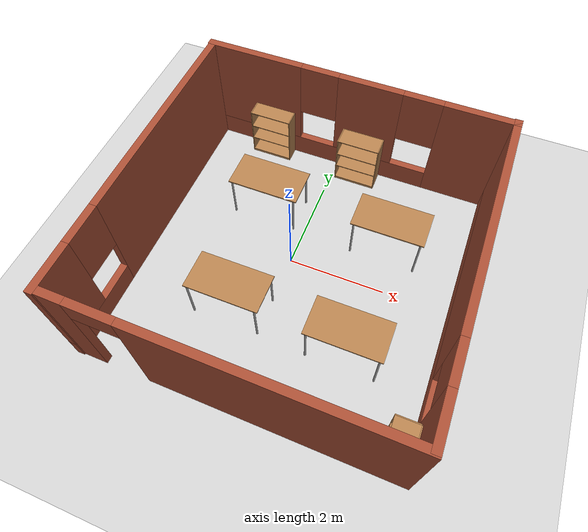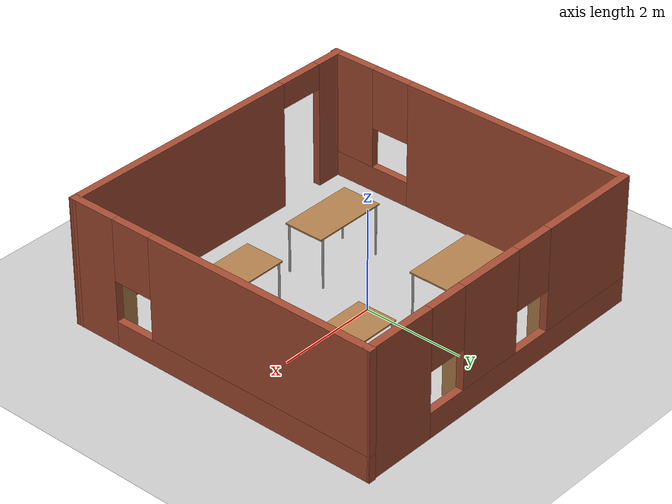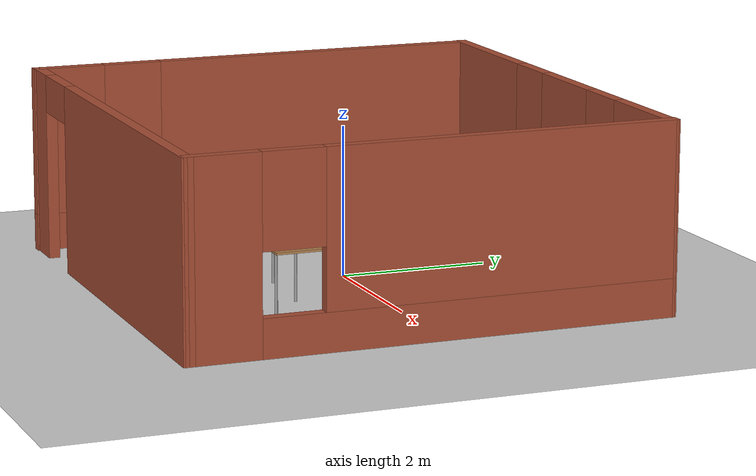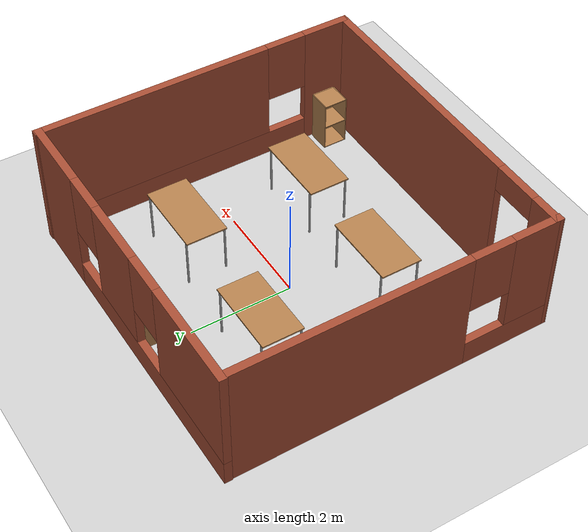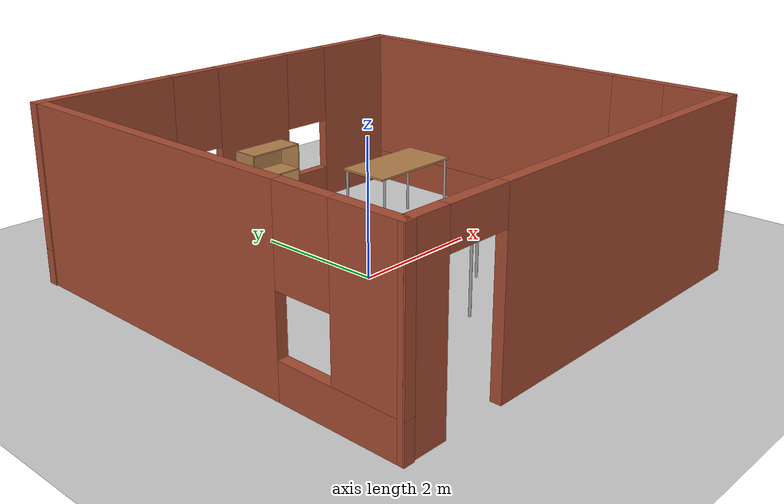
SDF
<sdf version="1.7">
 <world name="default">
  <model name="ground_plane">
   <static>1</static>
   <link name="link">
    <collision name="collision">
     <geometry><plane><normal>0 0 1</normal><size>100 100</size></plane></geometry>
     <surface>
      <contact><collide_bitmask>65535</collide_bitmask></contact>
      <friction><ode><mu>100</mu><mu2>50</mu2></ode></friction>
     </surface>
    </collision>
    <visual name="visual">
     <cast_shadows>0</cast_shadows>
     <geometry><plane><normal>0 0 1</normal><size>100 100</size></plane></geometry>
     <material>
      <script><uri>file://media/materials/scripts/gazebo.material</uri><name>Gazebo/Grey</name></script>
     </material>
    </visual>
   </link>
  </model>
  <light name="sun" type="directional">
   <pose>0 0 10 0 -0 0</pose>
   <diffuse>0.8 0.8 0.8 1</diffuse>
   <specular>0.2 0.2 0.2 1</specular>
   <attenuation>
    <range>1000</range>
    <constant>0.9</constant>
    <linear>0.01</linear>
    <quadratic>0.001</quadratic>
   </attenuation>
   <direction>-0.5 0.1 -0.9</direction>
   <spot><inner_angle>0</inner_angle><outer_angle>0</outer_angle><falloff>0</falloff></spot>
  </light>
  <scene><shadows>0</shadows><ambient>0.4 0.4 0.4 1</ambient><background>0.7 0.7 0.7 1</background></scene>
  <physics type="ode">
   <real_time_update_rate>1000</real_time_update_rate>
   <max_step_size>0.001</max_step_size>
   <real_time_factor>1</real_time_factor>
   <ode>
    <solver>
     <type>quick</type>
     <iters>150</iters>
     <precon_iters>0</precon_iters>
     <sor>1.4</sor>
     <use_dynamic_moi_rescaling>1</use_dynamic_moi_rescaling>
    </solver>
    <constraints>
     <cfm>1e-05</cfm>
     <erp>0.2</erp>
     <contact_max_correcting_vel>2000</contact_max_correcting_vel>
     <contact_surface_layer>0.01</contact_surface_layer>
    </constraints>
   </ode>
  </physics>
  <gravity>0 0 -9.8</gravity>
  <magnetic_field>6e-06 2.3e-05 -4.2e-05</magnetic_field>
  <atmosphere type="adiabatic"/>
  <audio><device>default</device></audio>
  <spherical_coordinates>
   <surface_model>EARTH_WGS84</surface_model>
   <latitude_deg>0</latitude_deg>
   <longitude_deg>0</longitude_deg>
   <elevation>0</elevation>
   <heading_deg>0</heading_deg>
  </spherical_coordinates>
  <model name="Untitled">
   <pose>0.238412 -0.147541 0 0 -0 0</pose>
   <link name="Wall_0">
    <pose>-3.1591 -0.071326 0 0 -0 -1.5708</pose>
    <visual name="Wall_0_Visual_0">
     <pose>-0.890529 0 1.25 0 -0 0</pose>
     <geometry><box><size>4.46894 0.15 2.5</size></box></geometry>
     <material>
      <script><uri>file://media/materials/scripts/gazebo.material</uri><name>Gazebo/Bricks</name></script>
      <ambient>1 1 1 1</ambient>
     </material>
     <meta><layer>0</layer></meta>
    </visual>
    <collision name="Wall_0_Collision_0">
     <geometry><box><size>4.46894 0.15 2.5</size></box></geometry>
     <pose>-0.890529 0 1.25 0 -0 0</pose>
    </collision>
    <visual name="Wall_0_Visual_1">
     <pose>2.23447 0 0.25 0 -0 0</pose>
     <geometry><box><size>1.78106 0.15 0.5</size></box></geometry>
     <material>
      <script><uri>file://media/materials/scripts/gazebo.material</uri><name>Gazebo/Bricks</name></script>
      <ambient>1 1 1 1</ambient>
     </material>
     <meta><layer>0</layer></meta>
    </visual>
    <collision name="Wall_0_Collision_1">
     <geometry><box><size>1.78106 0.15 0.5</size></box></geometry>
     <pose>2.23447 0 0.25 0 -0 0</pose>
    </collision>
    <visual name="Wall_0_Visual_2">
     <pose>2.63447 0 1.5 0 -0 0</pose>
     <geometry><box><size>0.981059 0.15 2</size></box></geometry>
     <material>
      <script><uri>file://media/materials/scripts/gazebo.material</uri><name>Gazebo/Bricks</name></script>
      <ambient>1 1 1 1</ambient>
     </material>
     <meta><layer>0</layer></meta>
    </visual>
    <collision name="Wall_0_Collision_2">
     <geometry><box><size>0.981059 0.15 2</size></box></geometry>
     <pose>2.63447 0 1.5 0 -0 0</pose>
    </collision>
    <visual name="Wall_0_Visual_3">
     <pose>1.74394 0 1.9 0 -0 0</pose>
     <geometry><box><size>0.8 0.15 1.2</size></box></geometry>
     <material>
      <script><uri>file://media/materials/scripts/gazebo.material</uri><name>Gazebo/Bricks</name></script>
      <ambient>1 1 1 1</ambient>
     </material>
     <meta><layer>0</layer></meta>
    </visual>
    <collision name="Wall_0_Collision_3">
     <geometry><box><size>0.8 0.15 1.2</size></box></geometry>
     <pose>1.74394 0 1.9 0 -0 0</pose>
    </collision>
   </link>
   <link name="Wall_1">
    <pose>0.0085 -3.12133 0 0 -0 -0.00635</pose>
    <visual name="Wall_1_Visual_0">
     <pose>-2.92293 0 1.25 0 -0 0</pose>
     <geometry><box><size>0.639461 0.15 2.5</size></box></geometry>
     <material>
      <script><uri>file://media/materials/scripts/gazebo.material</uri><name>Gazebo/Bricks</name></script>
      <ambient>1 1 1 1</ambient>
     </material>
     <meta><layer>0</layer></meta>
    </visual>
    <collision name="Wall_1_Collision_0">
     <geometry><box><size>0.639461 0.15 2.5</size></box></geometry>
     <pose>-2.92293 0 1.25 0 -0 0</pose>
    </collision>
    <visual name="Wall_1_Visual_1">
     <pose>0.769731 0 1.25 0 -0 0</pose>
     <geometry><box><size>4.94587 0.15 2.5</size></box></geometry>
     <material>
      <script><uri>file://media/materials/scripts/gazebo.material</uri><name>Gazebo/Bricks</name></script>
      <ambient>1 1 1 1</ambient>
     </material>
     <meta><layer>0</layer></meta>
    </visual>
    <collision name="Wall_1_Collision_1">
     <geometry><box><size>4.94587 0.15 2.5</size></box></geometry>
     <pose>0.769731 0 1.25 0 -0 0</pose>
    </collision>
    <visual name="Wall_1_Visual_2">
     <pose>-2.1532 0 2.25 0 -0 0</pose>
     <geometry><box><size>0.9 0.15 0.5</size></box></geometry>
     <material>
      <script><uri>file://media/materials/scripts/gazebo.material</uri><name>Gazebo/Bricks</name></script>
      <ambient>1 1 1 1</ambient>
     </material>
     <meta><layer>0</layer></meta>
    </visual>
    <collision name="Wall_1_Collision_2">
     <geometry><box><size>0.9 0.15 0.5</size></box></geometry>
     <pose>-2.1532 0 2.25 0 -0 0</pose>
    </collision>
   </link>
   <link name="Wall_2">
    <pose>3.17476 0.013521 0 0 -0 1.57122</pose>
    <visual name="Wall_2_Visual_0">
     <pose>-2.72484 0 1.25 0 -0 0</pose>
     <geometry><box><size>0.957046 0.15 2.5</size></box></geometry>
     <material>
      <script><uri>file://media/materials/scripts/gazebo.material</uri><name>Gazebo/Bricks</name></script>
      <ambient>1 1 1 1</ambient>
     </material>
     <meta><layer>0</layer></meta>
    </visual>
    <collision name="Wall_2_Collision_0">
     <geometry><box><size>0.957046 0.15 2.5</size></box></geometry>
     <pose>-2.72484 0 1.25 0 -0 0</pose>
    </collision>
    <visual name="Wall_2_Visual_1">
     <pose>0.478523 0 0.25 0 -0 0</pose>
     <geometry><box><size>5.44968 0.15 0.5</size></box></geometry>
     <material>
      <script><uri>file://media/materials/scripts/gazebo.material</uri><name>Gazebo/Bricks</name></script>
      <ambient>1 1 1 1</ambient>
     </material>
     <meta><layer>0</layer></meta>
    </visual>
    <collision name="Wall_2_Collision_1">
     <geometry><box><size>5.44968 0.15 0.5</size></box></geometry>
     <pose>0.478523 0 0.25 0 -0 0</pose>
    </collision>
    <visual name="Wall_2_Visual_2">
     <pose>0.878523 0 1.5 0 -0 0</pose>
     <geometry><box><size>4.64968 0.15 2</size></box></geometry>
     <material>
      <script><uri>file://media/materials/scripts/gazebo.material</uri><name>Gazebo/Bricks</name></script>
      <ambient>1 1 1 1</ambient>
     </material>
     <meta><layer>0</layer></meta>
    </visual>
    <collision name="Wall_2_Collision_2">
     <geometry><box><size>4.64968 0.15 2</size></box></geometry>
     <pose>0.878523 0 1.5 0 -0 0</pose>
    </collision>
    <visual name="Wall_2_Visual_3">
     <pose>-1.84631 0 1.9 0 -0 0</pose>
     <geometry><box><size>0.8 0.15 1.2</size></box></geometry>
     <material>
      <script><uri>file://media/materials/scripts/gazebo.material</uri><name>Gazebo/Bricks</name></script>
      <ambient>1 1 1 1</ambient>
     </material>
     <meta><layer>0</layer></meta>
    </visual>
    <collision name="Wall_2_Collision_3">
     <geometry><box><size>0.8 0.15 1.2</size></box></geometry>
     <pose>-1.84631 0 1.9 0 -0 0</pose>
    </collision>
   </link>
   <link name="Wall_3">
    <pose>-0.001575 3.12177 0 0 -0 3.14159</pose>
    <visual name="Wall_3_Visual_0">
     <pose>-2.51176 0 1.25 0 -0 0</pose>
     <geometry><box><size>1.47648 0.15 2.5</size></box></geometry>
     <material>
      <script><uri>file://media/materials/scripts/gazebo.material</uri><name>Gazebo/Bricks</name></script>
      <ambient>1 1 1 1</ambient>
     </material>
     <meta><layer>0</layer></meta>
    </visual>
    <collision name="Wall_3_Collision_0">
     <geometry><box><size>1.47648 0.15 2.5</size></box></geometry>
     <pose>-2.51176 0 1.25 0 -0 0</pose>
    </collision>
    <visual name="Wall_3_Visual_1">
     <pose>0.738241 0 0.25 0 -0 0</pose>
     <geometry><box><size>5.02352 0.15 0.5</size></box></geometry>
     <material>
      <script><uri>file://media/materials/scripts/gazebo.material</uri><name>Gazebo/Bricks</name></script>
      <ambient>1 1 1 1</ambient>
     </material>
     <meta><layer>0</layer></meta>
    </visual>
    <collision name="Wall_3_Collision_1">
     <geometry><box><size>5.02352 0.15 0.5</size></box></geometry>
     <pose>0.738241 0 0.25 0 -0 0</pose>
    </collision>
    <visual name="Wall_3_Visual_2">
     <pose>-0.306624 0 1.5 0 -0 0</pose>
     <geometry><box><size>1.33379 0.15 2</size></box></geometry>
     <material>
      <script><uri>file://media/materials/scripts/gazebo.material</uri><name>Gazebo/Bricks</name></script>
      <ambient>1 1 1 1</ambient>
     </material>
     <meta><layer>0</layer></meta>
    </visual>
    <collision name="Wall_3_Collision_2">
     <geometry><box><size>1.33379 0.15 2</size></box></geometry>
     <pose>-0.306624 0 1.5 0 -0 0</pose>
    </collision>
    <visual name="Wall_3_Visual_3">
     <pose>2.20513 0 1.5 0 -0 0</pose>
     <geometry><box><size>2.08973 0.15 2</size></box></geometry>
     <material>
      <script><uri>file://media/materials/scripts/gazebo.material</uri><name>Gazebo/Bricks</name></script>
      <ambient>1 1 1 1</ambient>
     </material>
     <meta><layer>0</layer></meta>
    </visual>
    <collision name="Wall_3_Collision_3">
     <geometry><box><size>2.08973 0.15 2</size></box></geometry>
     <pose>2.20513 0 1.5 0 -0 0</pose>
    </collision>
    <visual name="Wall_3_Visual_4">
     <pose>-1.37352 0 1.9 0 -0 0</pose>
     <geometry><box><size>0.8 0.15 1.2</size></box></geometry>
     <material>
      <script><uri>file://media/materials/scripts/gazebo.material</uri><name>Gazebo/Bricks</name></script>
      <ambient>1 1 1 1</ambient>
     </material>
     <meta><layer>0</layer></meta>
    </visual>
    <collision name="Wall_3_Collision_4">
     <geometry><box><size>0.8 0.15 1.2</size></box></geometry>
     <pose>-1.37352 0 1.9 0 -0 0</pose>
    </collision>
    <visual name="Wall_3_Visual_5">
     <pose>0.76027 0 1.9 0 -0 0</pose>
     <geometry><box><size>0.8 0.15 1.2</size></box></geometry>
     <material>
      <script><uri>file://media/materials/scripts/gazebo.material</uri><name>Gazebo/Bricks</name></script>
      <ambient>1 1 1 1</ambient>
     </material>
     <meta><layer>0</layer></meta>
    </visual>
    <collision name="Wall_3_Collision_5">
     <geometry><box><size>0.8 0.15 1.2</size></box></geometry>
     <pose>0.76027 0 1.9 0 -0 0</pose>
    </collision>
   </link>
   <static>1</static>
  </model>
  <model name="bookshelf">
   <static>1</static>
   <link name="link">
    <inertial><mass>1</mass></inertial>
    <collision name="back">
     <pose>0 0.005 0.6 0 -0 0</pose>
     <geometry><box><size>0.9 0.01 1.2</size></box></geometry>
    </collision>
    <visual name="visual1">
     <pose>0 0.005 0.6 0 -0 0</pose>
     <geometry><box><size>0.9 0.01 1.2</size></box></geometry>
     <material>
      <script><uri>file://media/materials/scripts/gazebo.material</uri><name>Gazebo/Wood</name></script>
     </material>
    </visual>
    <collision name="left_side">
     <pose>0.45 -0.195 0.6 0 -0 0</pose>
     <geometry><box><size>0.02 0.4 1.2</size></box></geometry>
    </collision>
    <visual name="visual2">
     <pose>0.45 -0.195 0.6 0 -0 0</pose>
     <geometry><box><size>0.02 0.4 1.2</size></box></geometry>
     <material>
      <script><uri>file://media/materials/scripts/gazebo.material</uri><name>Gazebo/Wood</name></script>
     </material>
    </visual>
    <collision name="right_side">
     <pose>-0.45 -0.195 0.6 0 -0 0</pose>
     <geometry><box><size>0.02 0.4 1.2</size></box></geometry>
    </collision>
    <visual name="visual3">
     <pose>-0.45 -0.195 0.6 0 -0 0</pose>
     <geometry><box><size>0.02 0.4 1.2</size></box></geometry>
     <material>
      <script><uri>file://media/materials/scripts/gazebo.material</uri><name>Gazebo/Wood</name></script>
     </material>
    </visual>
    <collision name="bottom">
     <pose>0 -0.195 0.03 0 -0 0</pose>
     <geometry><box><size>0.88 0.4 0.06</size></box></geometry>
    </collision>
    <visual name="visual4">
     <pose>0 -0.195 0.03 0 -0 0</pose>
     <geometry><box><size>0.88 0.4 0.06</size></box></geometry>
     <material>
      <script><uri>file://media/materials/scripts/gazebo.material</uri><name>Gazebo/Wood</name></script>
     </material>
    </visual>
    <collision name="top">
     <pose>0 -0.195 1.19 0 -0 0</pose>
     <geometry><box><size>0.88 0.4 0.02</size></box></geometry>
    </collision>
    <visual name="visual5">
     <pose>0 -0.195 1.19 0 -0 0</pose>
     <geometry><box><size>0.88 0.4 0.02</size></box></geometry>
     <material>
      <script><uri>file://media/materials/scripts/gazebo.material</uri><name>Gazebo/Wood</name></script>
     </material>
    </visual>
    <collision name="low_shelf">
     <pose>0 -0.195 0.43 0 -0 0</pose>
     <geometry><box><size>0.88 0.4 0.02</size></box></geometry>
    </collision>
    <visual name="visual6">
     <pose>0 -0.195 0.43 0 -0 0</pose>
     <geometry><box><size>0.88 0.4 0.02</size></box></geometry>
     <material>
      <script><uri>file://media/materials/scripts/gazebo.material</uri><name>Gazebo/Wood</name></script>
     </material>
    </visual>
    <collision name="high_shelf">
     <pose>0 -0.195 0.8 0 -0 0</pose>
     <geometry><box><size>0.88 0.4 0.02</size></box></geometry>
    </collision>
    <visual name="visual7">
     <pose>0 -0.195 0.8 0 -0 0</pose>
     <geometry><box><size>0.88 0.4 0.02</size></box></geometry>
     <material>
      <script><uri>file://media/materials/scripts/gazebo.material</uri><name>Gazebo/Wood</name></script>
     </material>
    </visual>
   </link>
   <pose>0.551823 2.85263 0 0 -0 0</pose>
  </model>
  <model name="bookshelf_0">
   <static>1</static>
   <link name="link">
    <inertial><mass>1</mass></inertial>
    <collision name="back">
     <pose>0 0.005 0.6 0 -0 0</pose>
     <geometry><box><size>0.9 0.01 1.2</size></box></geometry>
    </collision>
    <visual name="visual1">
     <pose>0 0.005 0.6 0 -0 0</pose>
     <geometry><box><size>0.9 0.01 1.2</size></box></geometry>
     <material>
      <script><uri>file://media/materials/scripts/gazebo.material</uri><name>Gazebo/Wood</name></script>
     </material>
    </visual>
    <collision name="left_side">
     <pose>0.45 -0.195 0.6 0 -0 0</pose>
     <geometry><box><size>0.02 0.4 1.2</size></box></geometry>
    </collision>
    <visual name="visual2">
     <pose>0.45 -0.195 0.6 0 -0 0</pose>
     <geometry><box><size>0.02 0.4 1.2</size></box></geometry>
     <material>
      <script><uri>file://media/materials/scripts/gazebo.material</uri><name>Gazebo/Wood</name></script>
     </material>
    </visual>
    <collision name="right_side">
     <pose>-0.45 -0.195 0.6 0 -0 0</pose>
     <geometry><box><size>0.02 0.4 1.2</size></box></geometry>
    </collision>
    <visual name="visual3">
     <pose>-0.45 -0.195 0.6 0 -0 0</pose>
     <geometry><box><size>0.02 0.4 1.2</size></box></geometry>
     <material>
      <script><uri>file://media/materials/scripts/gazebo.material</uri><name>Gazebo/Wood</name></script>
     </material>
    </visual>
    <collision name="bottom">
     <pose>0 -0.195 0.03 0 -0 0</pose>
     <geometry><box><size>0.88 0.4 0.06</size></box></geometry>
    </collision>
    <visual name="visual4">
     <pose>0 -0.195 0.03 0 -0 0</pose>
     <geometry><box><size>0.88 0.4 0.06</size></box></geometry>
     <material>
      <script><uri>file://media/materials/scripts/gazebo.material</uri><name>Gazebo/Wood</name></script>
     </material>
    </visual>
    <collision name="top">
     <pose>0 -0.195 1.19 0 -0 0</pose>
     <geometry><box><size>0.88 0.4 0.02</size></box></geometry>
    </collision>
    <visual name="visual5">
     <pose>0 -0.195 1.19 0 -0 0</pose>
     <geometry><box><size>0.88 0.4 0.02</size></box></geometry>
     <material>
      <script><uri>file://media/materials/scripts/gazebo.material</uri><name>Gazebo/Wood</name></script>
     </material>
    </visual>
    <collision name="low_shelf">
     <pose>0 -0.195 0.43 0 -0 0</pose>
     <geometry><box><size>0.88 0.4 0.02</size></box></geometry>
    </collision>
    <visual name="visual6">
     <pose>0 -0.195 0.43 0 -0 0</pose>
     <geometry><box><size>0.88 0.4 0.02</size></box></geometry>
     <material>
      <script><uri>file://media/materials/scripts/gazebo.material</uri><name>Gazebo/Wood</name></script>
     </material>
    </visual>
    <collision name="high_shelf">
     <pose>0 -0.195 0.8 0 -0 0</pose>
     <geometry><box><size>0.88 0.4 0.02</size></box></geometry>
    </collision>
    <visual name="visual7">
     <pose>0 -0.195 0.8 0 -0 0</pose>
     <geometry><box><size>0.88 0.4 0.02</size></box></geometry>
     <material>
      <script><uri>file://media/materials/scripts/gazebo.material</uri><name>Gazebo/Wood</name></script>
     </material>
    </visual>
   </link>
   <pose>-1.51892 2.94673 0 0 -0 0</pose>
  </model>
  <model name="cabinet">
   <static>1</static>
   <link name="cabinet_bottom_plate">
    <inertial>
     <pose>0 0 -1 0 -0 0</pose>
     <inertia><ixx>2.05</ixx><ixy>0</ixy><ixz>0</ixz><iyy>2.05</iyy><iyz>0</iyz><izz>2.05</izz></inertia>
     <mass>25</mass>
    </inertial>
    <collision name="cabinet_bottom_plate_geom">
     <pose>0 0 0.01 0 -0 0</pose>
     <geometry><box><size>0.45 0.45 0.02</size></box></geometry>
    </collision>
    <visual name="cabinet_bottom_plate_geom_visual">
     <pose>0 0 0.01 0 -0 0</pose>
     <geometry><box><size>0.45 0.45 0.02</size></box></geometry>
     <material>
      <script><uri>file://media/materials/scripts/gazebo.material</uri><name>Gazebo/Wood</name></script>
     </material>
    </visual>
    <collision name="cabinet_bottom_plate_geom_cabinet_back_plate">
     <pose>0.235 0 0.51 0 -0 0</pose>
     <geometry><box><size>0.02 0.45 1.02</size></box></geometry>
    </collision>
    <visual name="cabinet_bottom_plate_geom_cabinet_back_plate_visual">
     <pose>0.235 0 0.51 0 -0 0</pose>
     <geometry><box><size>0.02 0.45 1.02</size></box></geometry>
     <material>
      <script><uri>file://media/materials/scripts/gazebo.material</uri><name>Gazebo/Wood</name></script>
     </material>
    </visual>
    <collision name="cabinet_bottom_plate_geom_cabinet_left_plate">
     <pose>0 0.235 0.51 0 -0 0</pose>
     <geometry><box><size>0.45 0.02 1.02</size></box></geometry>
    </collision>
    <visual name="cabinet_bottom_plate_geom_cabinet_left_plate_visual">
     <pose>0 0.235 0.51 0 -0 0</pose>
     <geometry><box><size>0.45 0.02 1.02</size></box></geometry>
     <material>
      <script><uri>file://media/materials/scripts/gazebo.material</uri><name>Gazebo/Wood</name></script>
     </material>
    </visual>
    <collision name="cabinet_bottom_plate_geom_cabinet_middle_plate">
     <pose>0 0 0.51 0 -0 0</pose>
     <geometry><box><size>0.45 0.45 0.02</size></box></geometry>
    </collision>
    <visual name="cabinet_bottom_plate_geom_cabinet_middle_plate_visual">
     <pose>0 0 0.51 0 -0 0</pose>
     <geometry><box><size>0.45 0.45 0.02</size></box></geometry>
     <material>
      <script><uri>file://media/materials/scripts/gazebo.material</uri><name>Gazebo/Wood</name></script>
     </material>
    </visual>
    <collision name="cabinet_bottom_plate_geom_cabinet_right_plate">
     <pose>0 -0.235 0.51 0 -0 0</pose>
     <geometry><box><size>0.45 0.02 1.02</size></box></geometry>
    </collision>
    <visual name="cabinet_bottom_plate_geom_cabinet_right_plate_visual">
     <pose>0 -0.235 0.51 0 -0 0</pose>
     <geometry><box><size>0.45 0.02 1.02</size></box></geometry>
     <material>
      <script><uri>file://media/materials/scripts/gazebo.material</uri><name>Gazebo/Wood</name></script>
     </material>
    </visual>
    <collision name="cabinet_bottom_plate_geom_cabinet_top_plate">
     <pose>0 0 1.01 0 -0 0</pose>
     <geometry><box><size>0.45 0.45 0.02</size></box></geometry>
    </collision>
    <visual name="cabinet_bottom_plate_geom_cabinet_top_plate_visual">
     <pose>0 0 1.01 0 -0 0</pose>
     <geometry><box><size>0.45 0.45 0.02</size></box></geometry>
     <material>
      <script><uri>file://media/materials/scripts/gazebo.material</uri><name>Gazebo/Wood</name></script>
     </material>
    </visual>
   </link>
   <pose>3.08996 -2.80039 0 0 -0 0</pose>
  </model>
  <model name="table">
   <static>1</static>
   <link name="link">
    <collision name="surface">
     <pose>0 0 1 0 -0 0</pose>
     <geometry><box><size>1.5 0.8 0.03</size></box></geometry>
     <surface><friction><ode><mu>0.6</mu><mu2>0.6</mu2></ode></friction></surface>
    </collision>
    <visual name="visual1">
     <pose>0 0 1 0 -0 0</pose>
     <geometry><box><size>1.5 0.8 0.03</size></box></geometry>
     <material>
      <script><uri>file://media/materials/scripts/gazebo.material</uri><name>Gazebo/Wood</name></script>
     </material>
    </visual>
    <collision name="front_left_leg">
     <pose>0.68 0.38 0.5 0 -0 0</pose>
     <geometry><cylinder><radius>0.02</radius><length>1</length></cylinder></geometry>
    </collision>
    <visual name="front_left_leg">
     <pose>0.68 0.38 0.5 0 -0 0</pose>
     <geometry><cylinder><radius>0.02</radius><length>1</length></cylinder></geometry>
     <material>
      <script><uri>file://media/materials/scripts/gazebo.material</uri><name>Gazebo/Grey</name></script>
     </material>
    </visual>
    <collision name="front_right_leg">
     <pose>0.68 -0.38 0.5 0 -0 0</pose>
     <geometry><cylinder><radius>0.02</radius><length>1</length></cylinder></geometry>
    </collision>
    <visual name="front_right_leg">
     <pose>0.68 -0.38 0.5 0 -0 0</pose>
     <geometry><cylinder><radius>0.02</radius><length>1</length></cylinder></geometry>
     <material>
      <script><uri>file://media/materials/scripts/gazebo.material</uri><name>Gazebo/Grey</name></script>
     </material>
    </visual>
    <collision name="back_right_leg">
     <pose>-0.68 -0.38 0.5 0 -0 0</pose>
     <geometry><cylinder><radius>0.02</radius><length>1</length></cylinder></geometry>
    </collision>
    <visual name="back_right_leg">
     <pose>-0.68 -0.38 0.5 0 -0 0</pose>
     <geometry><cylinder><radius>0.02</radius><length>1</length></cylinder></geometry>
     <material>
      <script><uri>file://media/materials/scripts/gazebo.material</uri><name>Gazebo/Grey</name></script>
     </material>
    </visual>
    <collision name="back_left_leg">
     <pose>-0.68 0.38 0.5 0 -0 0</pose>
     <geometry><cylinder><radius>0.02</radius><length>1</length></cylinder></geometry>
    </collision>
    <visual name="back_left_leg">
     <pose>-0.68 0.38 0.5 0 -0 0</pose>
     <geometry><cylinder><radius>0.02</radius><length>1</length></cylinder></geometry>
     <material>
      <script><uri>file://media/materials/scripts/gazebo.material</uri><name>Gazebo/Grey</name></script>
     </material>
    </visual>
   </link>
   <pose>1.74917 1.07852 0 0 -0 0</pose>
  </model>
  <model name="table_0">
   <static>1</static>
   <link name="link">
    <collision name="surface">
     <pose>0 0 1 0 -0 0</pose>
     <geometry><box><size>1.5 0.8 0.03</size></box></geometry>
     <surface><friction><ode><mu>0.6</mu><mu2>0.6</mu2></ode></friction></surface>
    </collision>
    <visual name="visual1">
     <pose>0 0 1 0 -0 0</pose>
     <geometry><box><size>1.5 0.8 0.03</size></box></geometry>
     <material>
      <script><uri>file://media/materials/scripts/gazebo.material</uri><name>Gazebo/Wood</name></script>
     </material>
    </visual>
    <collision name="front_left_leg">
     <pose>0.68 0.38 0.5 0 -0 0</pose>
     <geometry><cylinder><radius>0.02</radius><length>1</length></cylinder></geometry>
    </collision>
    <visual name="front_left_leg">
     <pose>0.68 0.38 0.5 0 -0 0</pose>
     <geometry><cylinder><radius>0.02</radius><length>1</length></cylinder></geometry>
     <material>
      <script><uri>file://media/materials/scripts/gazebo.material</uri><name>Gazebo/Grey</name></script>
     </material>
    </visual>
    <collision name="front_right_leg">
     <pose>0.68 -0.38 0.5 0 -0 0</pose>
     <geometry><cylinder><radius>0.02</radius><length>1</length></cylinder></geometry>
    </collision>
    <visual name="front_right_leg">
     <pose>0.68 -0.38 0.5 0 -0 0</pose>
     <geometry><cylinder><radius>0.02</radius><length>1</length></cylinder></geometry>
     <material>
      <script><uri>file://media/materials/scripts/gazebo.material</uri><name>Gazebo/Grey</name></script>
     </material>
    </visual>
    <collision name="back_right_leg">
     <pose>-0.68 -0.38 0.5 0 -0 0</pose>
     <geometry><cylinder><radius>0.02</radius><length>1</length></cylinder></geometry>
    </collision>
    <visual name="back_right_leg">
     <pose>-0.68 -0.38 0.5 0 -0 0</pose>
     <geometry><cylinder><radius>0.02</radius><length>1</length></cylinder></geometry>
     <material>
      <script><uri>file://media/materials/scripts/gazebo.material</uri><name>Gazebo/Grey</name></script>
     </material>
    </visual>
    <collision name="back_left_leg">
     <pose>-0.68 0.38 0.5 0 -0 0</pose>
     <geometry><cylinder><radius>0.02</radius><length>1</length></cylinder></geometry>
    </collision>
    <visual name="back_left_leg">
     <pose>-0.68 0.38 0.5 0 -0 0</pose>
     <geometry><cylinder><radius>0.02</radius><length>1</length></cylinder></geometry>
     <material>
      <script><uri>file://media/materials/scripts/gazebo.material</uri><name>Gazebo/Grey</name></script>
     </material>
    </visual>
   </link>
   <pose>-0.932946 1.15377 0 0 -0 0</pose>
  </model>
  <model name="table_1">
   <static>1</static>
   <link name="link">
    <collision name="surface">
     <pose>0 0 1 0 -0 0</pose>
     <geometry><box><size>1.5 0.8 0.03</size></box></geometry>
     <surface><friction><ode><mu>0.6</mu><mu2>0.6</mu2></ode></friction></surface>
    </collision>
    <visual name="visual1">
     <pose>0 0 1 0 -0 0</pose>
     <geometry><box><size>1.5 0.8 0.03</size></box></geometry>
     <material>
      <script><uri>file://media/materials/scripts/gazebo.material</uri><name>Gazebo/Wood</name></script>
     </material>
    </visual>
    <collision name="front_left_leg">
     <pose>0.68 0.38 0.5 0 -0 0</pose>
     <geometry><cylinder><radius>0.02</radius><length>1</length></cylinder></geometry>
    </collision>
    <visual name="front_left_leg">
     <pose>0.68 0.38 0.5 0 -0 0</pose>
     <geometry><cylinder><radius>0.02</radius><length>1</length></cylinder></geometry>
     <material>
      <script><uri>file://media/materials/scripts/gazebo.material</uri><name>Gazebo/Grey</name></script>
     </material>
    </visual>
    <collision name="front_right_leg">
     <pose>0.68 -0.38 0.5 0 -0 0</pose>
     <geometry><cylinder><radius>0.02</radius><length>1</length></cylinder></geometry>
    </collision>
    <visual name="front_right_leg">
     <pose>0.68 -0.38 0.5 0 -0 0</pose>
     <geometry><cylinder><radius>0.02</radius><length>1</length></cylinder></geometry>
     <material>
      <script><uri>file://media/materials/scripts/gazebo.material</uri><name>Gazebo/Grey</name></script>
     </material>
    </visual>
    <collision name="back_right_leg">
     <pose>-0.68 -0.38 0.5 0 -0 0</pose>
     <geometry><cylinder><radius>0.02</radius><length>1</length></cylinder></geometry>
    </collision>
    <visual name="back_right_leg">
     <pose>-0.68 -0.38 0.5 0 -0 0</pose>
     <geometry><cylinder><radius>0.02</radius><length>1</length></cylinder></geometry>
     <material>
      <script><uri>file://media/materials/scripts/gazebo.material</uri><name>Gazebo/Grey</name></script>
     </material>
    </visual>
    <collision name="back_left_leg">
     <pose>-0.68 0.38 0.5 0 -0 0</pose>
     <geometry><cylinder><radius>0.02</radius><length>1</length></cylinder></geometry>
    </collision>
    <visual name="back_left_leg">
     <pose>-0.68 0.38 0.5 0 -0 0</pose>
     <geometry><cylinder><radius>0.02</radius><length>1</length></cylinder></geometry>
     <material>
      <script><uri>file://media/materials/scripts/gazebo.material</uri><name>Gazebo/Grey</name></script>
     </material>
    </visual>
   </link>
   <pose>1.70627 -1.43063 0 0 -0 0</pose>
  </model>
  <model name="table_2">
   <static>1</static>
   <link name="link">
    <collision name="surface">
     <pose>0 0 1 0 -0 0</pose>
     <geometry><box><size>1.5 0.8 0.03</size></box></geometry>
     <surface><friction><ode><mu>0.6</mu><mu2>0.6</mu2></ode></friction></surface>
    </collision>
    <visual name="visual1">
     <pose>0 0 1 0 -0 0</pose>
     <geometry><box><size>1.5 0.8 0.03</size></box></geometry>
     <material>
      <script><uri>file://media/materials/scripts/gazebo.material</uri><name>Gazebo/Wood</name></script>
     </material>
    </visual>
    <collision name="front_left_leg">
     <pose>0.68 0.38 0.5 0 -0 0</pose>
     <geometry><cylinder><radius>0.02</radius><length>1</length></cylinder></geometry>
    </collision>
    <visual name="front_left_leg">
     <pose>0.68 0.38 0.5 0 -0 0</pose>
     <geometry><cylinder><radius>0.02</radius><length>1</length></cylinder></geometry>
     <material>
      <script><uri>file://media/materials/scripts/gazebo.material</uri><name>Gazebo/Grey</name></script>
     </material>
    </visual>
    <collision name="front_right_leg">
     <pose>0.68 -0.38 0.5 0 -0 0</pose>
     <geometry><cylinder><radius>0.02</radius><length>1</length></cylinder></geometry>
    </collision>
    <visual name="front_right_leg">
     <pose>0.68 -0.38 0.5 0 -0 0</pose>
     <geometry><cylinder><radius>0.02</radius><length>1</length></cylinder></geometry>
     <material>
      <script><uri>file://media/materials/scripts/gazebo.material</uri><name>Gazebo/Grey</name></script>
     </material>
    </visual>
    <collision name="back_right_leg">
     <pose>-0.68 -0.38 0.5 0 -0 0</pose>
     <geometry><cylinder><radius>0.02</radius><length>1</length></cylinder></geometry>
    </collision>
    <visual name="back_right_leg">
     <pose>-0.68 -0.38 0.5 0 -0 0</pose>
     <geometry><cylinder><radius>0.02</radius><length>1</length></cylinder></geometry>
     <material>
      <script><uri>file://media/materials/scripts/gazebo.material</uri><name>Gazebo/Grey</name></script>
     </material>
    </visual>
    <collision name="back_left_leg">
     <pose>-0.68 0.38 0.5 0 -0 0</pose>
     <geometry><cylinder><radius>0.02</radius><length>1</length></cylinder></geometry>
    </collision>
    <visual name="back_left_leg">
     <pose>-0.68 0.38 0.5 0 -0 0</pose>
     <geometry><cylinder><radius>0.02</radius><length>1</length></cylinder></geometry>
     <material>
      <script><uri>file://media/materials/scripts/gazebo.material</uri><name>Gazebo/Grey</name></script>
     </material>
    </visual>
   </link>
   <pose>-0.667819 -1.36443 0 0 -0 0</pose>
  </model>
 </world>
</sdf>
